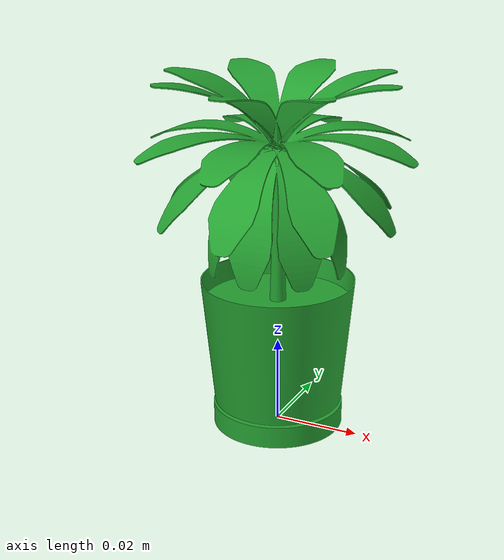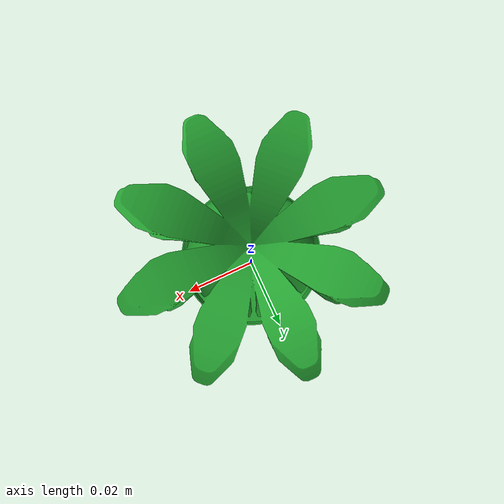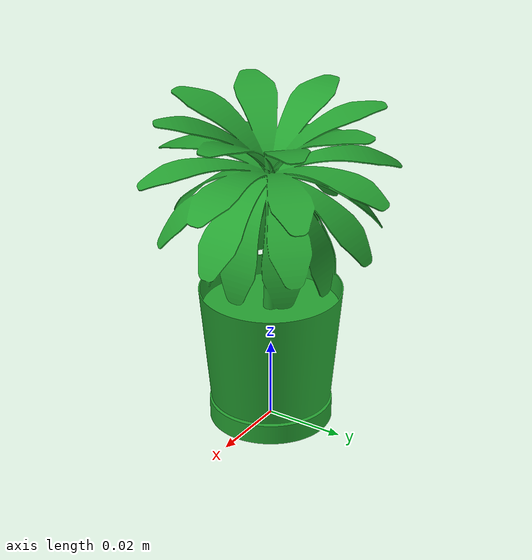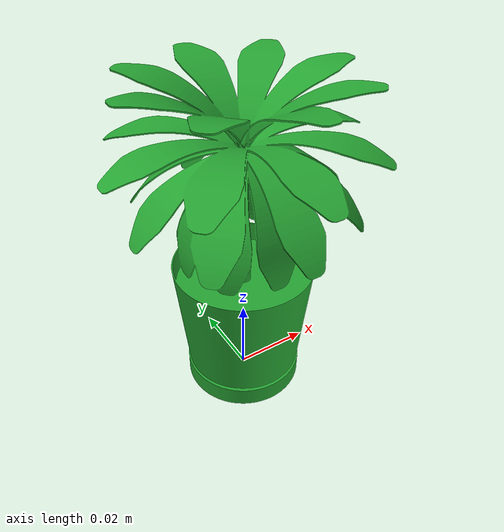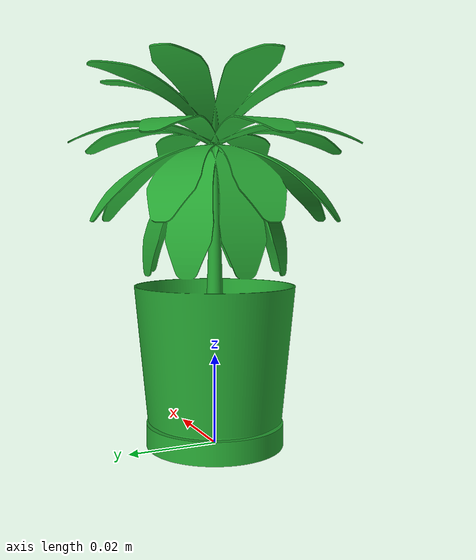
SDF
<?xml version="1.0" ?>
<sdf version="1.5">
  <model name="plant">
    <static>false</static>

    <link name="base_link">

      <inertial>
        <pose>0 0 0.05 0 0 0</pose>
        <mass>0.3</mass>

        <inertia>
          <ixx>0.0004375</ixx>
          <ixy>0.0</ixy>
          <ixz>0.0</ixz>

          <iyy>0.0004375</iyy>
          <iyz>0.0</iyz>

          <izz>0.000375</izz>
        </inertia>
      </inertial>

      <collision name="collision_maceta">
        <pose>0 0 0 0 0 0</pose>

        <geometry>
          <mesh>
            <uri>model://plant/meshes/planta.stl</uri>
            <scale>0.2 0.2 0.19</scale>
          </mesh>
        </geometry>
      </collision>

      <visual name="visual_planta">
        <pose>0 0 0 0 0 0</pose>

        <geometry>
          <mesh>
            <uri>model://plant/meshes/planta.stl</uri>
            <scale>0.2 0.2 0.2</scale>
          </mesh>
        </geometry>

        <material>
          <script>
            <uri>file://media/materials/scripts/gazebo.material</uri>
            <name>Gazebo/Green</name>
          </script>
        </material>
      </visual>

    </link>
  </model>
</sdf>
